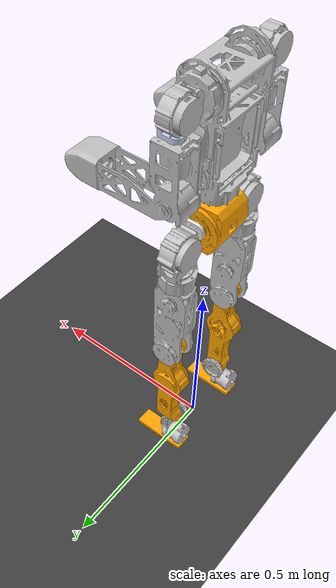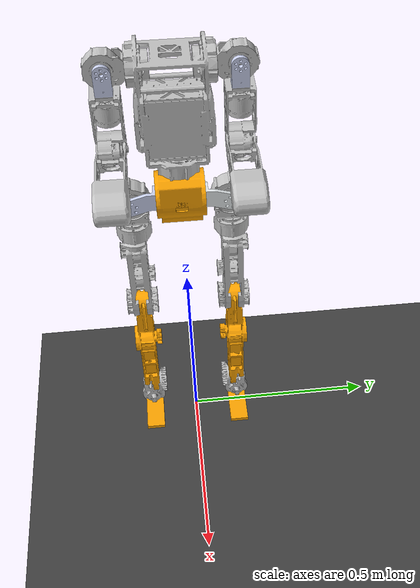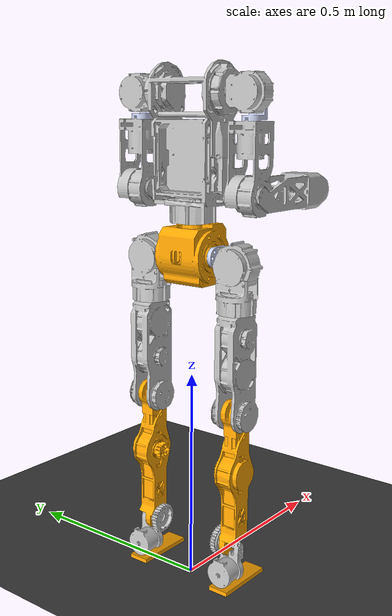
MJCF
<mujoco model="E1_v2">
  <compiler angle="radian" meshdir="../meshes/"/>
  <statistic meansize="0.177939" extent="1.9618" center="0.0465088 1.93584e-06 -0.21519"/>
  <default>
    <joint damping="0.01" armature="0.01" frictionloss="0.01"/>
  </default>
  <asset>
    <texture type="skybox" builtin="gradient" width="128" height="128" rgb1="0.4 0.6 0.8" rgb2="0 0 0"/>
    <texture name="plane" type="2d" builtin="checker" rgb1="0.2 0.2 0.2" rgb2="0.3 0.3 0.3" width="512"
              height="512"/>
    <material name="plane" reflectance="0.0" texture="plane" texrepeat="1 1" texuniform="true"/>
    <mesh name="pelvis" file="pelvis.STL"/>
    <mesh name="left_hip_pitch_link" file="left_hip_pitch_link.STL"/>
    <mesh name="left_hip_roll_link" file="left_hip_roll_link.STL"/>
    <mesh name="left_hip_yaw_link" file="left_hip_yaw_link.STL"/>
    <mesh name="left_knee_link" file="left_knee_link.STL"/>
    <mesh name="left_ankle_pitch_link" file="left_ankle_pitch_link.STL"/>
    <mesh name="right_hip_pitch_link" file="right_hip_pitch_link.STL"/>
    <mesh name="right_hip_roll_link" file="right_hip_roll_link.STL"/>
    <mesh name="right_hip_yaw_link" file="right_hip_yaw_link.STL"/>
    <mesh name="right_knee_link" file="right_knee_link.STL"/>
    <mesh name="right_ankle_pitch_link" file="right_ankle_pitch_link.STL"/>
    <mesh name="torso_link" file="torso_link.STL"/>
    <mesh name="left_shoulder_pitch_link" file="left_shoulder_pitch_link.STL"/>
    <mesh name="left_shoulder_roll_link" file="left_shoulder_roll_link.STL"/>
    <mesh name="left_shoulder_yaw_link" file="left_shoulder_yaw_link.STL"/>
    <mesh name="left_elbow_link" file="left_elbow_link.STL"/>
    <mesh name="right_shoulder_pitch_link" file="right_shoulder_pitch_link.STL"/>
    <mesh name="right_shoulder_roll_link" file="right_shoulder_roll_link.STL"/>
    <mesh name="right_shoulder_yaw_link" file="right_shoulder_yaw_link.STL"/>
    <mesh name="right_elbow_link" file="right_elbow_link.STL"/>
  </asset>

  <worldbody>
    <geom name="floor" pos="0.001 0 0" size="100 100 .125" type="plane" material="plane" condim="3"
          conaffinity="15" friction="0.7 0.7 0.001"/>
    <light mode="trackcom" pos="0 0 5" dir="0 0 -1"/>
    <body name="pelvis" pos="0 0 0.715">
      <inertial pos="0.0022609 0 0.071672" quat="0.993777 0 -0.111385 0" mass="2.95" diaginertia="0.0090496 0.00843088 0.00730993"/>
      <joint name="floating_base_joint" type="free" limited="false" actuatorfrclimited="false"/>
      <geom type="mesh" contype="0" conaffinity="0" group="1" density="0" rgba="1 0.64706 0 1" mesh="pelvis"/>
      <geom size="0.035 0.035 0.035" pos="0 0 0.07" type="box" rgba="1 0.64706 0 1"/>
      <site name="imu" pos="0 0 -0.00"/>
      <body name="left_hip_pitch_link" pos="0 0.057 0.065">
        <inertial pos="0.020044 0.0301526 -0.00422561" quat="0.627234 0.686462 0.353637 -0.101436" mass="0.18" diaginertia="0.000177793 0.000150738 5.17688e-05"/>
        <joint name="left_hip_pitch_joint" pos="0 0 0" axis="0 1 0" range="-1.57 1.57" actuatorfrcrange="-60 60"/>
        <geom type="mesh" contype="0" conaffinity="0" group="1" density="0" rgba="0.89804 0.91765 0.92941 1" mesh="left_hip_pitch_link"/>
        <body name="left_hip_roll_link" pos="0 0.065 -0.013057">
          <inertial pos="-0.00068638 -5.009e-05 -0.0357735" quat="0.999944 0.00308008 0.00965317 -0.00314352" mass="1.665" diaginertia="0.00409391 0.00387212 0.00178131"/>
          <joint name="left_hip_roll_joint" pos="0 0 0" axis="1 0 0" range="-0.3 1.57" actuatorfrcrange="-60 60"/>
          <geom type="mesh" contype="0" conaffinity="0" group="1" density="0" rgba="0.75294 0.75294 0.75294 1" mesh="left_hip_roll_link"/>
          <body name="left_hip_yaw_link" pos="0 0 -0.106">
            <inertial pos="0.00068457 -7.417e-05 -0.123295" quat="0.704428 0.0135549 0.00294679 0.70964" mass="2.055" diaginertia="0.0141754 0.0138037 0.00232509"/>
            <joint name="left_hip_yaw_joint" pos="0 0 0" axis="0 0 1" range="-1.57 1.57" actuatorfrcrange="-36 36"/>
            <geom type="mesh" contype="0" conaffinity="0" group="1" density="0" rgba="0.75294 0.75294 0.75294 1" mesh="left_hip_yaw_link"/>
            <body name="left_knee_link" pos="0 0 -0.228">
              <inertial pos="0.00371192 -0.00097881 -0.156429" quat="0.714688 0.000482624 -0.00500608 0.699426" mass="1.4" diaginertia="0.0153519 0.0151967 0.000832227"/>
              <joint name="left_knee_joint" pos="0 0 0" axis="0 1 0" range="0 2.45" actuatorfrcrange="-59.3 59.3"/>
              <geom type="mesh" contype="0" conaffinity="0" group="1" density="0" rgba="1 0.64706 0 1" mesh="left_knee_link"/>
              <geom size="0.015 0.015 0.13" pos="0 0 -0.16" type="box" rgba="1 0.64706 0 1"/>
              <body name="left_ankle_pitch_link" pos="0 0 -0.32">
                <inertial pos="-0.0109096 -0.00574639 -0.0370866" quat="0.440961 -0.20841 0.0425785 0.871955" mass="0.785" diaginertia="0.00124346 0.00101122 0.000536033"/>
                <joint name="left_ankle_pitch_joint" pos="0 0 0" axis="0 1 0" range="-0.45 0.45" actuatorfrcrange="-59.3 59.3"/>
                <geom type="mesh" contype="0" conaffinity="0" group="1" density="0" rgba="0.75294 0.75294 0.75294 1" mesh="left_ankle_pitch_link"/>
                <body name="left_ankle_roll_link" pos="0 0 -0.06">
                  <inertial pos="0.0123494 -6.993e-05 -0.0320654" quat="-0.000493007 0.69858 -0.00216045 0.715529" mass="0.275" diaginertia="0.000792703 0.000716452 0.000128165"/>
                  <joint name="left_ankle_roll_joint" pos="0 0 0" axis="1 0 0" range="-0.26 0.26" actuatorfrcrange="-14 14"/>
                  <geom size="0.075 0.025 0.005" pos="0.02 0 -0.04" type="box" contype="0" conaffinity="0" group="1" density="0" rgba="1 0.64706 0 1"/>
                  <geom size="0.075 0.025 0.005" pos="0.02 0 -0.04" type="box" rgba="1 0.64706 0 1"/>
                </body>
              </body>
            </body>
          </body>
        </body>
      </body>
      <body name="right_hip_pitch_link" pos="0 -0.057 0.065">
        <inertial pos="0.020044 -0.0301526 -0.00422561" quat="0.686462 0.627234 0.101436 -0.353637" mass="0.18" diaginertia="0.000177793 0.000150738 5.17688e-05"/>
        <joint name="right_hip_pitch_joint" pos="0 0 0" axis="0 1 0" range="-1.57 1.57" actuatorfrcrange="-60 60"/>
        <geom type="mesh" contype="0" conaffinity="0" group="1" density="0" rgba="0.79216 0.81961 0.93333 1" mesh="right_hip_pitch_link"/>
        <body name="right_hip_roll_link" pos="0 -0.065 -0.013057">
          <inertial pos="-0.00068634 5.01e-05 -0.0357735" quat="0.999947 -0.00313967 0.00963826 -0.00195039" mass="1.665" diaginertia="0.00409389 0.00387212 0.00178131"/>
          <joint name="right_hip_roll_joint" pos="0 0 0" axis="1 0 0" range="-1.57 0.3" actuatorfrcrange="-60 60"/>
          <geom type="mesh" contype="0" conaffinity="0" group="1" density="0" rgba="0.75294 0.75294 0.75294 1" mesh="right_hip_roll_link"/>
          <body name="right_hip_yaw_link" pos="0 0 -0.106">
            <inertial pos="0.00068454 7.42e-05 -0.123295" quat="0.70964 0.0029471 0.0135552 0.704428" mass="2.0055" diaginertia="0.0141754 0.0138037 0.00232509"/>
            <joint name="right_hip_yaw_joint" pos="0 0 0" axis="0 0 1" range="-1.57 1.57" actuatorfrcrange="-36 36"/>
            <geom type="mesh" contype="0" conaffinity="0" group="1" density="0" rgba="0.75294 0.75294 0.75294 1" mesh="right_hip_yaw_link"/>
            <body name="right_knee_link" pos="0 0 -0.228">
              <inertial pos="0.00371191 0.0009788 -0.156429" quat="0.699426 -0.00500584 0.000482867 0.714687" mass="1.4" diaginertia="0.0153519 0.0151967 0.000832227"/>
              <joint name="right_knee_joint" pos="0 0 0" axis="0 1 0" range="0 2.45" actuatorfrcrange="-59.3 59.3"/>
              <geom type="mesh" contype="0" conaffinity="0" group="1" density="0" rgba="1 0.64706 0 1" mesh="right_knee_link"/>
              <geom size="0.015 0.015 0.13" pos="0 0 -0.16" type="box" rgba="1 0.64706 0 1"/>
              <body name="right_ankle_pitch_link" pos="0 0 -0.32">
                <inertial pos="-0.0109096 0.00574639 -0.0370867" quat="0.871955 0.0425785 -0.20841 0.440961" mass="0.785" diaginertia="0.00124346 0.00101122 0.000536033"/>
                <joint name="right_ankle_pitch_joint" pos="0 0 0" axis="0 1 0" range="-0.45 0.45" actuatorfrcrange="-59.3 59.3"/>
                <geom type="mesh" contype="0" conaffinity="0" group="1" density="0" rgba="0.75294 0.75294 0.75294 1" mesh="right_ankle_pitch_link"/>
                <body name="right_ankle_roll_link" pos="0 0 -0.06">
                  <inertial pos="0.0123494 6.993e-05 -0.0320654" quat="0.000493007 0.69858 0.00216045 0.715529" mass="0.275" diaginertia="0.000792703 0.000716452 0.000128165"/>
                  <joint name="right_ankle_roll_joint" pos="0 0 0" axis="1 0 0" range="-0.26 0.26" actuatorfrcrange="-14 14"/>
                  <geom size="0.075 0.025 0.005" pos="0.02 0 -0.04" type="box" contype="0" conaffinity="0" group="1" density="0" rgba="1 0.64706 0 1"/>
                  <geom size="0.075 0.025 0.005" pos="0.02 0 -0.04" type="box" rgba="1 0.64706 0 1"/>
                </body>
              </body>
            </body>
          </body>
        </body>
      </body>
      <body name="torso_link" pos="0 0 0.135">
        <inertial pos="0.00998693 -0.00042796 0.155648" quat="0.999905 0.0021747 0.0135711 0.000991982" mass="7" diaginertia="0.0595851 0.0452582 0.0237456"/>
        <joint name="waist_yaw_joint" pos="0 0 0" axis="0 0 1" range="-1.5708 1.5708" actuatorfrcrange="-60 60"/>
        <geom type="mesh" contype="0" conaffinity="0" group="1" density="0" rgba="0.75294 0.75294 0.75294 1" mesh="torso_link"/>
        <body name="left_shoulder_pitch_link" pos="0 0.0985 0.28">
          <inertial pos="-0.0029314 0.041987 -2.95e-06" quat="0.706745 0.706919 -0.0197448 -0.0196724" mass="0.7" diaginertia="0.000833414 0.00069977 0.000500536"/>
          <joint name="left_shoulder_pitch_joint" pos="0 0 0" axis="0 1 0" range="-1.0472 2.7925" actuatorfrcrange="-36 36"/>
          <geom type="mesh" contype="0" conaffinity="0" group="1" density="0" rgba="0.75294 0.75294 0.75294 1" mesh="left_shoulder_pitch_link"/>
          <body name="left_shoulder_roll_link" pos="0 0.052 0">
            <inertial pos="0.017782 0 -0.0289723" quat="0.988463 0 -0.151464 0" mass="0.15" diaginertia="0.000100297 9.367e-05 3.51927e-05"/>
            <joint name="left_shoulder_roll_joint" pos="0 0 0" axis="1 0 0" range="-0.1745 2.9671" actuatorfrcrange="-36 36"/>
            <geom type="mesh" contype="0" conaffinity="0" group="1" density="0" rgba="0.79216 0.81961 0.93333 1" mesh="left_shoulder_roll_link"/>
            <body name="left_shoulder_yaw_link" pos="0 0 -0.057">
              <inertial pos="-0.00319289 -9.4e-05 -0.0885952" quat="0.968587 0.0147306 -0.0241296 -0.247062" mass="1.4" diaginertia="0.00581143 0.00568508 0.00128079"/>
              <joint name="left_shoulder_yaw_joint" pos="0 0 0" axis="0 0 1" range="-2.618 2.618" actuatorfrcrange="-14 14"/>
              <geom type="mesh" contype="0" conaffinity="0" group="1" density="0" rgba="0.75294 0.75294 0.75294 1" mesh="left_shoulder_yaw_link"/>
              <body name="left_elbow_link" pos="0 0 -0.153">
                <inertial pos="0.191825 -0.00153935 -0.00059239" quat="-0.00777362 0.717071 0.00120043 0.696955" mass="0.5" diaginertia="0.00215959 0.00210749 0.000501129"/>
                <joint name="left_elbow_joint" pos="0 0 0" axis="0 1 0" range="-0.6981 1.5708" actuatorfrcrange="-36 36"/>
                <geom type="mesh" contype="0" conaffinity="0" group="1" density="0" rgba="0.75294 0.75294 0.75294 1" mesh="left_elbow_link"/>
                <geom type="mesh" rgba="0.75294 0.75294 0.75294 1" mesh="left_elbow_link"/>
              </body>
            </body>
          </body>
        </body>
        <body name="right_shoulder_pitch_link" pos="0 -0.0985 0.28">
          <inertial pos="-0.0029314 -0.0422941 -0.00218097" quat="0.731807 0.680677 0.0160547 0.0296457" mass="0.7" diaginertia="0.000839004 0.00070504 0.000500036"/>
          <joint name="right_shoulder_pitch_joint" pos="0 0 0" axis="0 1 0" range="-1.0472 2.7925" actuatorfrcrange="-36 36"/>
          <geom type="mesh" contype="0" conaffinity="0" group="1" density="0" rgba="0.75294 0.75294 0.75294 1" mesh="right_shoulder_pitch_link"/>
          <body name="right_shoulder_roll_link" pos="0 -0.051904 -0.0028082">
            <inertial pos="0.017782 0 -0.0289723" quat="0.988463 0 -0.151464 0" mass="0.15" diaginertia="0.000100297 9.367e-05 3.51927e-05"/>
            <joint name="right_shoulder_roll_joint" pos="0 0 0" axis="1 0 0" range="-2.9671 0.1745" actuatorfrcrange="-36 36"/>
            <geom type="mesh" contype="0" conaffinity="0" group="1" density="0" rgba="0.79216 0.81961 0.93333 1" mesh="right_shoulder_roll_link"/>
            <body name="right_shoulder_yaw_link" pos="0 0 -0.057">
              <inertial pos="-0.00319289 -9.4e-05 -0.0885952" quat="0.964815 -0.000336881 0.0278801 0.261448" mass="1.4" diaginertia="0.0058179 0.00567841 0.00128099"/>
              <joint name="right_shoulder_yaw_joint" pos="0 0 0" axis="0 0 1" range="-2.618 2.618" actuatorfrcrange="-14 14"/>
              <geom type="mesh" contype="0" conaffinity="0" group="1" density="0" rgba="0.75294 0.75294 0.75294 1" mesh="right_shoulder_yaw_link"/>
              <body name="right_elbow_link" pos="0 0 -0.153">
                <inertial pos="0.191825 -0.00153935 -0.00059239" quat="-0.00777362 0.717071 0.00120043 0.696955" mass="0.5" diaginertia="0.00215959 0.00210749 0.000501129"/>
                <joint name="right_elbow_joint" pos="0 0 0" axis="0 1 0" range="-0.6981 1.5708" actuatorfrcrange="-36 36"/>
                <geom type="mesh" contype="0" conaffinity="0" group="1" density="0" rgba="0.75294 0.75294 0.75294 1" mesh="right_elbow_link"/>
                <geom type="mesh" rgba="0.75294 0.75294 0.75294 1" mesh="right_elbow_link"/>
              </body>
            </body>
          </body>
        </body>
      </body>
    </body>
  </worldbody>
  <actuator>
    <motor name="left_hip_pitch" joint="left_hip_pitch_joint" gear="1" ctrllimited="true" ctrlrange="-60.0 60.0" />
    <motor name="left_hip_roll" joint="left_hip_roll_joint" gear="1" ctrllimited="true" ctrlrange="-60.0 60.0" />
    <motor name="left_hip_yaw" joint="left_hip_yaw_joint" gear="1" ctrllimited="true" ctrlrange="-36.0 36.0" />
    <motor name="left_knee" joint="left_knee_joint" gear="1" ctrllimited="true" ctrlrange="-59.3 59.3" />
    <motor name="left_ankle_pitch" joint="left_ankle_pitch_joint" gear="1" ctrllimited="true" ctrlrange="-59.3 59.3" />
    <motor name="left_ankle_roll" joint="left_ankle_roll_joint" gear="1" ctrllimited="true" ctrlrange="-14.0 14.0" />

    <motor name="right_hip_pitch" joint="right_hip_pitch_joint" gear="1" ctrllimited="true" ctrlrange="-60.0 60.0" />
    <motor name="right_hip_roll" joint="right_hip_roll_joint" gear="1" ctrllimited="true" ctrlrange="-60.0 60.0" />
    <motor name="right_hip_yaw" joint="right_hip_yaw_joint" gear="1" ctrllimited="true" ctrlrange="-36.0 36.0" />
    <motor name="right_knee" joint="right_knee_joint" gear="1" ctrllimited="true" ctrlrange="-59.3 59.3" />
    <motor name="right_ankle_pitch" joint="right_ankle_pitch_joint" gear="1" ctrllimited="true" ctrlrange="-59.3 59.3" />
    <motor name="right_ankle_roll" joint="right_ankle_roll_joint" gear="1" ctrllimited="true" ctrlrange="-14.0 14.0" />

    <motor name="torso" joint="waist_yaw_joint" gear="1" ctrllimited="true" ctrlrange="-60.0 60.0" />

    <motor name="left_shoulder_pitch" joint="left_shoulder_pitch_joint" gear="1" ctrllimited="true" ctrlrange="-36.0 36.0" />
    <motor name="left_shoulder_roll" joint="left_shoulder_roll_joint" gear="1" ctrllimited="true" ctrlrange="-36.0 36.0" />
    <motor name="left_shoulder_yaw" joint="left_shoulder_yaw_joint" gear="1" ctrllimited="true" ctrlrange="-14.0 14.0" />
    <motor name="left_elbow_pitch" joint="left_elbow_joint" gear="1" ctrllimited="true" ctrlrange="-36.0 36.0" />

    <motor name="right_shoulder_pitch" joint="right_shoulder_pitch_joint" gear="1" ctrllimited="true" ctrlrange="-36.0 36.0" />
    <motor name="right_shoulder_roll" joint="right_shoulder_roll_joint" gear="1" ctrllimited="true" ctrlrange="-36.0 36.0" />
    <motor name="right_shoulder_yaw" joint="right_shoulder_yaw_joint" gear="1" ctrllimited="true" ctrlrange="-14.0 14.0" />
    <motor name="right_elbow_pitch" joint="right_elbow_joint" gear="1" ctrllimited="true" ctrlrange="-36.0 36.0" />
  </actuator>

  <sensor>
    <jointpos name="left_hip_pitch_pos" joint="left_hip_pitch_joint"/>
    <jointpos name="left_hip_roll_pos" joint="left_hip_roll_joint"/>
    <jointpos name="left_hip_yaw_pos" joint="left_hip_yaw_joint"/>
    <jointpos name="left_knee_pos" joint="left_knee_joint"/>
    <jointpos name="left_ankle_pitch_pos" joint="left_ankle_pitch_joint"/>
    <jointpos name="left_ankle_roll_pos" joint="left_ankle_roll_joint"/>
    <jointpos name="right_hip_pitch_pos" joint="right_hip_pitch_joint"/>
    <jointpos name="right_hip_roll_pos" joint="right_hip_roll_joint"/>
    <jointpos name="right_hip_yaw_pos" joint="right_hip_yaw_joint"/>
    <jointpos name="right_knee_pos" joint="right_knee_joint"/>
    <jointpos name="right_ankle_pitch_pos" joint="right_ankle_pitch_joint"/>
    <jointpos name="right_ankle_roll_pos" joint="right_ankle_roll_joint"/>
    <jointpos name="waist_yaw_pos" joint="waist_yaw_joint"/>
    <jointpos name="left_shoulder_pitch_pos" joint="left_shoulder_pitch_joint"/>
    <jointpos name="left_shoulder_roll_pos" joint="left_shoulder_roll_joint"/>
    <jointpos name="left_shoulder_yaw_pos" joint="left_shoulder_yaw_joint"/>
    <jointpos name="left_elbow_pitch_pos" joint="left_elbow_joint"/>
    <jointpos name="right_shoulder_pitch_pos" joint="right_shoulder_pitch_joint"/>
    <jointpos name="right_shoulder_roll_pos" joint="right_shoulder_roll_joint"/>
    <jointpos name="right_shoulder_yaw_pos" joint="right_shoulder_yaw_joint"/>
    <jointpos name="right_elbow_pitch_pos" joint="right_elbow_joint"/>

    <jointvel name="left_hip_pitch_vel" joint="left_hip_pitch_joint"/>
    <jointvel name="left_hip_roll_vel" joint="left_hip_roll_joint"/>
    <jointvel name="left_hip_yaw_vel" joint="left_hip_yaw_joint"/>
    <jointvel name="left_knee_vel" joint="left_knee_joint"/>
    <jointvel name="left_ankle_pitch_vel" joint="left_ankle_pitch_joint"/>
    <jointvel name="left_ankle_roll_vel" joint="left_ankle_roll_joint"/>
    <jointvel name="right_hip_pitch_vel" joint="right_hip_pitch_joint"/>
    <jointvel name="right_hip_roll_vel" joint="right_hip_roll_joint"/>
    <jointvel name="right_hip_yaw_vel" joint="right_hip_yaw_joint"/>
    <jointvel name="right_knee_vel" joint="right_knee_joint"/>
    <jointvel name="right_ankle_pitch_vel" joint="right_ankle_pitch_joint"/>
    <jointvel name="right_ankle_roll_vel" joint="right_ankle_roll_joint"/>
    <jointvel name="waist_yaw_vel" joint="waist_yaw_joint"/>
    <jointvel name="left_shoulder_pitch_vel" joint="left_shoulder_pitch_joint"/>
    <jointvel name="left_shoulder_roll_vel" joint="left_shoulder_roll_joint"/>
    <jointvel name="left_shoulder_yaw_vel" joint="left_shoulder_yaw_joint"/>
    <jointvel name="left_elbow_pitch_vel" joint="left_elbow_joint"/>
    <jointvel name="right_shoulder_pitch_vel" joint="right_shoulder_pitch_joint"/>
    <jointvel name="right_shoulder_roll_vel" joint="right_shoulder_roll_joint"/>
    <jointvel name="right_shoulder_yaw_vel" joint="right_shoulder_yaw_joint"/>
    <jointvel name="right_elbow_pitch_vel" joint="right_elbow_joint"/>

    <actuatorfrc name="left_hip_pitch_torque" actuator="left_hip_pitch"/>
    <actuatorfrc name="left_hip_roll_torque" actuator="left_hip_roll"/>
    <actuatorfrc name="left_hip_yaw_torque" actuator="left_hip_yaw"/>
    <actuatorfrc name="left_knee_torque" actuator="left_knee"/>
    <actuatorfrc name="left_ankle_pitch_torque" actuator="left_ankle_pitch"/>
    <actuatorfrc name="left_ankle_roll_torque" actuator="left_ankle_roll"/>
    <actuatorfrc name="right_hip_pitch_torque" actuator="right_hip_pitch"/>
    <actuatorfrc name="right_hip_roll_torque" actuator="right_hip_roll"/>
    <actuatorfrc name="right_hip_yaw_torque" actuator="right_hip_yaw"/>
    <actuatorfrc name="right_knee_torque" actuator="right_knee"/>
    <actuatorfrc name="right_ankle_pitch_torque" actuator="right_ankle_pitch"/>
    <actuatorfrc name="right_ankle_roll_torque" actuator="right_ankle_roll"/>
    <actuatorfrc name="waist_yaw_torque" actuator="torso"/>
    <actuatorfrc name="left_shoulder_pitch_torque" actuator="left_shoulder_pitch"/>
    <actuatorfrc name="left_shoulder_roll_torque" actuator="left_shoulder_roll"/>
    <actuatorfrc name="left_shoulder_yaw_torque" actuator="left_shoulder_yaw"/>
    <actuatorfrc name="left_elbow_pitch_torque" actuator="left_elbow_pitch"/>
    <actuatorfrc name="right_shoulder_pitch_torque" actuator="right_shoulder_pitch"/>
    <actuatorfrc name="right_shoulder_roll_torque" actuator="right_shoulder_roll"/>
    <actuatorfrc name="right_shoulder_yaw_torque" actuator="right_shoulder_yaw"/>
    <actuatorfrc name="right_elbow_pitch_torque" actuator="right_elbow_pitch"/>

    <framequat name='orientation' objtype='site' objname='imu'/>
    <framepos name='position' objtype='site' noise='0.001' objname='imu'/>
    <gyro name='angular-velocity' site='imu' cutoff='34.9'/>
    <accelerometer name='linear-acceleration' site='imu' cutoff='157'/>
  </sensor>
</mujoco>
